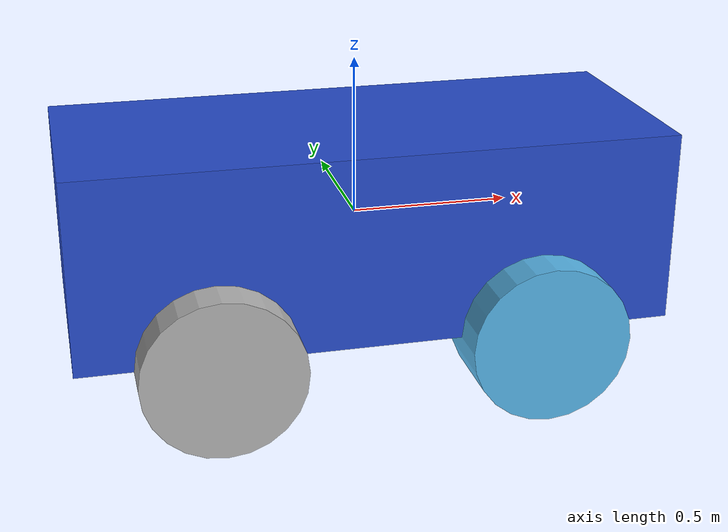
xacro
<?xml version="1.0" ?>
<robot name="tigra" xmlns:xacro="http://www.ros.org/wiki/xacro">

<xacro:property name="length" value="1.85" />
<xacro:property name="width" value="0.75" />
<xacro:property name="heigth" value="0.6" />
<xacro:property name="mass" value="420" />

<xacro:property name="wheel_width" value="0.25" />
<xacro:property name="wheel_radius" value="0.25" />
<xacro:property name="wheel_mass" value="20" />
<xacro:property name="wheel_turn_limit" value="${pi/4}"/>

<xacro:property name="wheelbase" value="1.24" />
<xacro:property name="trackbase" value="1.00" />
<xacro:property name="base_center" value="${length/2}" />

<!-- inertia -->
<xacro:macro name="null_inertial">
    <inertial>
      <mass value="0.001"/>
      <inertia ixx="0.001" ixy="0" ixz="0"
               iyy="0.001" iyz="0"
               izz="0.001"/>
    </inertial>
</xacro:macro>

<xacro:macro name="base_inertial"
               params="width length height mass *origin">
    <inertial>
      <xacro:insert_block name="origin"/>
      <mass value="${mass}"/>
      <inertia ixx="${mass * (width * width + height * height) / 12}"
               ixy="0" ixz="0"
               iyy="${mass * (length * length + height * height) / 12}"
               iyz="0"
               izz="${mass * (width * width + length * length) / 12}"/>
    </inertial>
</xacro:macro>

<xacro:macro name="wheel_inertial"
               params="r h mass *origin">
    <inertial>
      <xacro:insert_block name="origin"/>
      <mass value="${mass}"/>
      <inertia ixx="${mass / 12 * (3 * r * r + h * h)}" ixy="0.0" ixz="0.0"
               iyy="${mass / 12 * (3 * r * r + h * h)}" iyz="0.0"
               izz="${mass / 2 * r * r}" />
    </inertial>
</xacro:macro>

<!-- xacro base new -->
<link name="base_link">
<pose>0 0 0 0 0 0</pose>
    <visual>
     	<origin xyz="0 0 0" rpy="0 0 0" />
        <geometry>
            <box size="${length} ${width} ${heigth}"/>
        </geometry>
        <material name="blue"/>
    </visual>
    <collision name="base_collision">
    	<origin xyz="0 0 0" rpy="0 0 0" />
        <geometry>
            <box size="${length} ${width} ${heigth}"/>
        </geometry>
    </collision>
	<xacro:base_inertial
    width="${width}" length="${length}"
	height="${heigth}" mass="${mass}" >
    <origin xyz="0 0 0" rpy="0 0 0" />
	</xacro:base_inertial>
</link>

<!-- xacro wheel new -->
<xacro:macro name="wheels" params="name">
    <link name="${name}">
      <visual>
        <origin xyz="0 0 0" rpy="0 0 0" />
        <geometry>
          <cylinder length="${wheel_width}" radius="${wheel_radius}"/>
        </geometry>
      </visual>
      <collision>
        <origin xyz="0 0 0" rpy="0 0 0" />
        <geometry>
          <cylinder length="${wheel_width}" radius="${wheel_radius}"/>
        </geometry>
      </collision>
      <xacro:wheel_inertial
          r="${wheel_radius}" h="${wheel_width}"
          mass="${wheel_mass}" >
	  <origin xyz="0 0 0" rpy="0 0 0" />
      </xacro:wheel_inertial>
    </link>
</xacro:macro>

<!-- zawarka solution -->
<xacro:macro name="speed_wheel" params="name base_name xyz ">
    <xacro:wheels name="wheel_${name}" />

    <link name="spring1_${name}">
      <xacro:null_inertial/>
    </link>

    <joint name="${name}_spring_joint" type="prismatic">
    <limit lower="-0.000000001" upper="0.000000001" effort="0" velocity="0"/>
      <parent link="${base_name}"/>
      <child link="spring1_${name}"/>
      	<axis>
      		<dynamics>
      			<spring_stiffness>420000</spring_stiffness>
      			<spring_reference>1</spring_reference>
     			<damping>100000000</damping>
      			<friction>100</friction>
    		</dynamics>
    		<use_parent_model_frame>0</use_parent_model_frame>
  		</axis>
  		<physics>
    		<ode>
      			<implicit_spring_damper>1</implicit_spring_damper>
      			<cfm_damping>1</cfm_damping>
      				<limit>
        				<cfm>0</cfm>
        				<erp>0.2</erp>
      				</limit>
    		</ode>
  		</physics>
    </joint>

    <joint name="${name}_speed_joint" type="continuous">
      <parent link="spring1_${name}"/>
      <child link="wheel_${name}"/>
      <origin xyz="${xyz}" rpy="${pi/2} 0 0"/>
      <axis xyz="0 0 -1"/>
      <limit effort="500.0" velocity="11.0" />
    </joint>
</xacro:macro>

<xacro:macro name="steer_wheel" params="name base_name xyz">
    <xacro:wheels name="wheel_${name}" />

    <link name="spring2_${name}">
      <xacro:null_inertial/>
    </link>

     <link name="steer_${name}">
      <xacro:null_inertial/>
    </link>

    <joint name="${name}_spring_joint" type="prismatic">
    <limit lower="-0.000000001" upper="0.000000001" effort="0" velocity="0"/>
      <parent link="${base_name}"/>
      <child link="spring2_${name}"/>
      	<axis>
      		<dynamics>
      			<spring_stiffness>420000</spring_stiffness>
      			<spring_reference>1</spring_reference>
     			<damping>100000000</damping>
      			<friction>100</friction>
    		</dynamics>
    		<use_parent_model_frame>0</use_parent_model_frame>
  		</axis>
  		<physics>
    		<ode>
      			<implicit_spring_damper>1</implicit_spring_damper>
      			<cfm_damping>1</cfm_damping>
      				<limit>
        				<cfm>0</cfm>
        				<erp>0.2</erp>
      				</limit>
    		</ode>
  		</physics>
    </joint>

    <joint name="${name}_steer_joint" type="revolute">
      <limit lower="${-wheel_turn_limit}"
             upper="${wheel_turn_limit}"
             effort="0" velocity="0"/>
      <parent link="spring2_${name}"/>
      <child link="steer_${name}"/>
      <origin xyz="${xyz}" rpy="0 0 0"/>
      <axis xyz="0 0 1"/>

    </joint>

    <joint name="${name}_speed_joint" type="continuous">
      <parent link="steer_${name}"/>
      <child link="wheel_${name}"/>
      <origin xyz="0 0 0" rpy="${pi/2} 0 0"/>
      <axis xyz="0 0 -1"/>
      <limit effort="500" velocity="11.0" />
    </joint>

</xacro:macro>

	<xacro:steer_wheel name="joint_right_wheel_1" base_name="base_link" xyz="0.5 -0.375 -0.3" />
	<xacro:steer_wheel name="joint_left_wheel_1" base_name="base_link" xyz="0.5 0.375 -0.3" />
	<xacro:speed_wheel name="joint_right_wheel_2" base_name="base_link" xyz="-0.5 -0.375 -0.3" />
	<xacro:speed_wheel name="joint_left_wheel_2" base_name="base_link" xyz="-0.55 0.375 -0.3" />

</robot>
